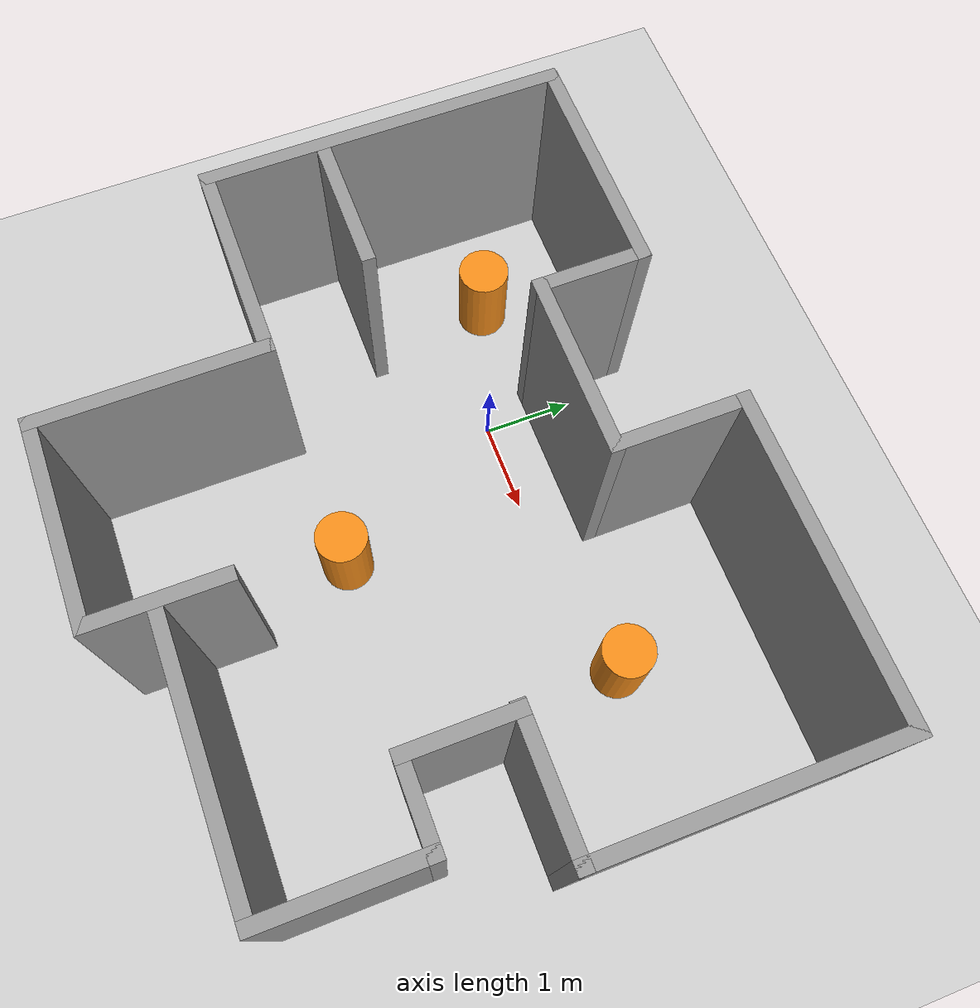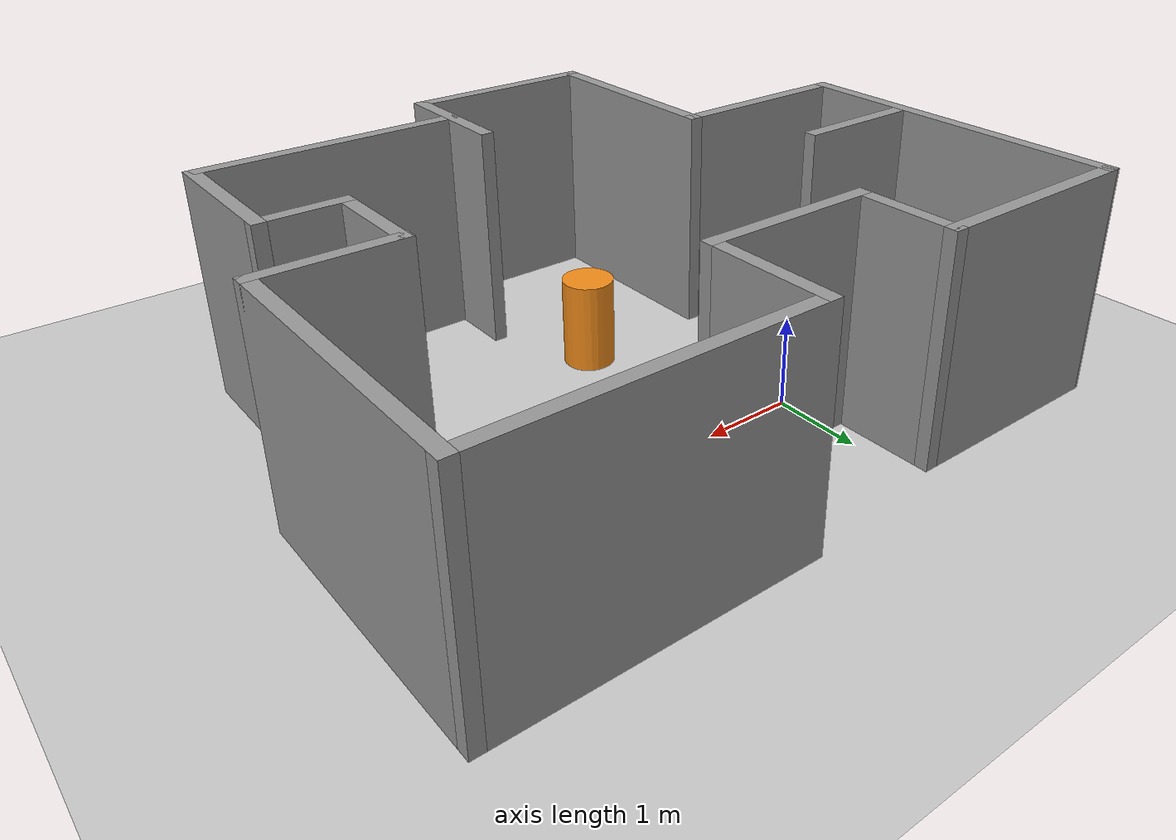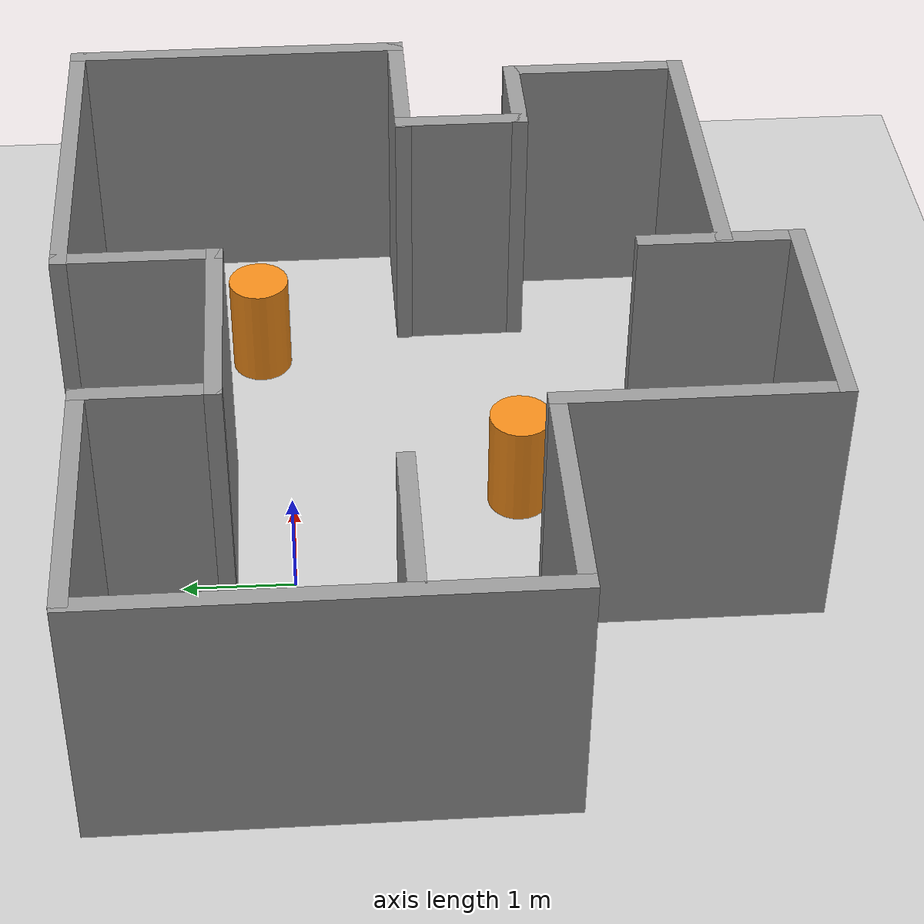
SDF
<sdf version="1.7">
 <world name="default">
  <light name="sun" type="directional">
   <pose>0 0 10 0 -0 0</pose>
   <diffuse>0.8 0.8 0.8 1</diffuse>
   <specular>0.2 0.2 0.2 1</specular>
   <attenuation>
    <range>1000</range>
    <constant>0.9</constant>
    <linear>0.01</linear>
    <quadratic>0.001</quadratic>
   </attenuation>
   <direction>-0.5 0.1 -0.9</direction>
   <spot><inner_angle>0</inner_angle><outer_angle>0</outer_angle><falloff>0</falloff></spot>
  </light>
  <model name="ground_plane">
   <static>1</static>
   <link name="link">
    <collision name="collision">
     <geometry><plane><normal>0 0 1</normal><size>100 100</size></plane></geometry>
     <surface>
      <contact><collide_bitmask>65535</collide_bitmask></contact>
      <friction><ode><mu>100</mu><mu2>50</mu2></ode></friction>
     </surface>
    </collision>
    <visual name="visual">
     <cast_shadows>0</cast_shadows>
     <geometry><plane><normal>0 0 1</normal><size>100 100</size></plane></geometry>
     <material>
      <script><uri>file://media/materials/scripts/gazebo.material</uri><name>Gazebo/Grey</name></script>
     </material>
    </visual>
   </link>
  </model>
  <gravity>0 0 -9.8</gravity>
  <magnetic_field>6e-06 2.3e-05 -4.2e-05</magnetic_field>
  <atmosphere type="adiabatic"/>
  <physics type="ode">
   <max_step_size>0.001</max_step_size>
   <real_time_factor>1</real_time_factor>
   <real_time_update_rate>1000</real_time_update_rate>
  </physics>
  <scene><ambient>0.4 0.4 0.4 1</ambient><background>0.7 0.7 0.7 1</background><shadows>0</shadows></scene>
  <spherical_coordinates>
   <surface_model>EARTH_WGS84</surface_model>
   <latitude_deg>0</latitude_deg>
   <longitude_deg>0</longitude_deg>
   <elevation>0</elevation>
   <heading_deg>0</heading_deg>
  </spherical_coordinates>
  <model name="enclosed_area_2">
   <pose>1.13556 -1.28959 0 0 -0 0</pose>
   <link name="Wall_14">
    <collision name="Wall_14_Collision">
     <geometry><box><size>4 0.15 2.5</size></box></geometry>
     <pose>0 0 1.25 0 -0 0</pose>
    </collision>
    <visual name="Wall_14_Visual">
     <pose>0 0 1.25 0 -0 0</pose>
     <geometry><box><size>4 0.15 2.5</size></box></geometry>
     <material>
      <script><uri>file://media/materials/scripts/gazebo.material</uri><name>Gazebo/Grey</name></script>
      <ambient>1 1 1 1</ambient>
     </material>
     <meta><layer>0</layer></meta>
    </visual>
    <pose>-3.79741 1.04659 0 0 -0 -1.5708</pose>
   </link>
   <link name="Wall_15">
    <collision name="Wall_15_Collision">
     <geometry><box><size>2.25 0.15 2.5</size></box></geometry>
     <pose>0 0 1.25 0 -0 0</pose>
    </collision>
    <visual name="Wall_15_Visual">
     <pose>0 0 1.25 0 -0 0</pose>
     <geometry><box><size>2.25 0.15 2.5</size></box></geometry>
     <material>
      <script><uri>file://media/materials/scripts/gazebo.material</uri><name>Gazebo/Grey</name></script>
      <ambient>1 1 1 1</ambient>
     </material>
     <meta><layer>0</layer></meta>
    </visual>
    <pose>-2.74741 -0.878412 0 0 -0 0</pose>
   </link>
   <link name="Wall_16">
    <collision name="Wall_16_Collision">
     <geometry><box><size>2.5 0.15 2.5</size></box></geometry>
     <pose>0 0 1.25 0 -0 0</pose>
    </collision>
    <visual name="Wall_16_Visual">
     <pose>0 0 1.25 0 -0 0</pose>
     <geometry><box><size>2.5 0.15 2.5</size></box></geometry>
     <material>
      <script><uri>file://media/materials/scripts/gazebo.material</uri><name>Gazebo/Grey</name></script>
      <ambient>1 1 1 1</ambient>
     </material>
     <meta><layer>0</layer></meta>
    </visual>
    <pose>-1.69741 -2.05341 0 0 -0 -1.5708</pose>
   </link>
   <link name="Wall_17">
    <collision name="Wall_17_Collision">
     <geometry><box><size>2.25 0.15 2.5</size></box></geometry>
     <pose>0 0 1.25 0 -0 0</pose>
    </collision>
    <visual name="Wall_17_Visual">
     <pose>0 0 1.25 0 -0 0</pose>
     <geometry><box><size>2.25 0.15 2.5</size></box></geometry>
     <material>
      <script><uri>file://media/materials/scripts/gazebo.material</uri><name>Gazebo/Grey</name></script>
      <ambient>1 1 1 1</ambient>
     </material>
     <meta><layer>0</layer></meta>
    </visual>
    <pose>-0.647409 -3.22841 0 0 -0 0</pose>
   </link>
   <link name="Wall_18">
    <collision name="Wall_18_Collision">
     <geometry><box><size>1.5 0.15 2.5</size></box></geometry>
     <pose>0 0 1.25 0 -0 0</pose>
    </collision>
    <visual name="Wall_18_Visual">
     <pose>0 0 1.25 0 -0 0</pose>
     <geometry><box><size>1.5 0.15 2.5</size></box></geometry>
     <material>
      <script><uri>file://media/materials/scripts/gazebo.material</uri><name>Gazebo/Grey</name></script>
      <ambient>1 1 1 1</ambient>
     </material>
     <meta><layer>0</layer></meta>
    </visual>
    <pose>0.402591 -2.55341 0 0 -0 1.5708</pose>
   </link>
   <link name="Wall_20">
    <collision name="Wall_20_Collision">
     <geometry><box><size>3 0.15 2.5</size></box></geometry>
     <pose>0 0 1.25 0 -0 0</pose>
    </collision>
    <visual name="Wall_20_Visual">
     <pose>0 0 1.25 0 -0 0</pose>
     <geometry><box><size>3 0.15 2.5</size></box></geometry>
     <material>
      <script><uri>file://media/materials/scripts/gazebo.material</uri><name>Gazebo/Grey</name></script>
      <ambient>1 1 1 1</ambient>
     </material>
     <meta><layer>0</layer></meta>
    </visual>
    <pose>1.85729 -2.57159 0 0 -0 0</pose>
   </link>
   <link name="Wall_21">
    <collision name="Wall_21_Collision">
     <geometry><box><size>1.75 0.15 2.5</size></box></geometry>
     <pose>0 0 1.25 0 -0 0</pose>
    </collision>
    <visual name="Wall_21_Visual">
     <pose>0 0 1.25 0 -0 0</pose>
     <geometry><box><size>1.75 0.15 2.5</size></box></geometry>
     <material>
      <script><uri>file://media/materials/scripts/gazebo.material</uri><name>Gazebo/Grey</name></script>
      <ambient>1 1 1 1</ambient>
     </material>
     <meta><layer>0</layer></meta>
    </visual>
    <pose>3.28229 -1.77159 0 0 -0 1.5708</pose>
   </link>
   <link name="Wall_22">
    <collision name="Wall_22_Collision">
     <geometry><box><size>1 0.15 2.5</size></box></geometry>
     <pose>0 0 1.25 0 -0 0</pose>
    </collision>
    <visual name="Wall_22_Visual">
     <pose>0 0 1.25 0 -0 0</pose>
     <geometry><box><size>1 0.15 2.5</size></box></geometry>
     <material>
      <script><uri>file://media/materials/scripts/gazebo.material</uri><name>Gazebo/Grey</name></script>
      <ambient>1 1 1 1</ambient>
     </material>
     <meta><layer>0</layer></meta>
    </visual>
    <pose>2.85729 -0.971589 0 0 -0 3.14159</pose>
   </link>
   <link name="Wall_23">
    <collision name="Wall_23_Collision">
     <geometry><box><size>1.25 0.15 2.5</size></box></geometry>
     <pose>0 0 1.25 0 -0 0</pose>
    </collision>
    <visual name="Wall_23_Visual">
     <pose>0 0 1.25 0 -0 0</pose>
     <geometry><box><size>1.25 0.15 2.5</size></box></geometry>
     <material>
      <script><uri>file://media/materials/scripts/gazebo.material</uri><name>Gazebo/Grey</name></script>
      <ambient>1 1 1 1</ambient>
     </material>
     <meta><layer>0</layer></meta>
    </visual>
    <pose>2.43229 -0.421589 0 0 -0 1.5708</pose>
   </link>
   <link name="Wall_24">
    <collision name="Wall_24_Collision">
     <geometry><box><size>1.53025 0.15 2.5</size></box></geometry>
     <pose>0 0 1.25 0 -0 0</pose>
    </collision>
    <visual name="Wall_24_Visual">
     <pose>0 0 1.25 0 -0 0</pose>
     <geometry><box><size>1.53025 0.15 2.5</size></box></geometry>
     <material>
      <script><uri>file://media/materials/scripts/gazebo.material</uri><name>Gazebo/Grey</name></script>
      <ambient>1 1 1 1</ambient>
     </material>
     <meta><layer>0</layer></meta>
    </visual>
    <pose>3.10729 0.128412 0 0 -0 0</pose>
   </link>
   <link name="Wall_25">
    <collision name="Wall_25_Collision">
     <geometry><box><size>3.25 0.15 2.5</size></box></geometry>
     <pose>0 0 1.25 0 -0 0</pose>
    </collision>
    <visual name="Wall_25_Visual">
     <pose>0 0 1.25 0 -0 0</pose>
     <geometry><box><size>3.25 0.15 2.5</size></box></geometry>
     <material>
      <script><uri>file://media/materials/scripts/gazebo.material</uri><name>Gazebo/Grey</name></script>
      <ambient>1 1 1 1</ambient>
     </material>
     <meta><layer>0</layer></meta>
    </visual>
    <pose>3.79741 1.67841 0 0 -0 1.5708</pose>
   </link>
   <link name="Wall_26">
    <collision name="Wall_26_Collision">
     <geometry><box><size>3.5 0.15 2.5</size></box></geometry>
     <pose>0 0 1.25 0 -0 0</pose>
    </collision>
    <visual name="Wall_26_Visual">
     <pose>0 0 1.25 0 -0 0</pose>
     <geometry><box><size>3.5 0.15 2.5</size></box></geometry>
     <material>
      <script><uri>file://media/materials/scripts/gazebo.material</uri><name>Gazebo/Grey</name></script>
      <ambient>1 1 1 1</ambient>
     </material>
     <meta><layer>0</layer></meta>
    </visual>
    <pose>2.12241 3.22841 0 0 -0 3.14159</pose>
   </link>
   <link name="Wall_27">
    <collision name="Wall_27_Collision">
     <geometry><box><size>1.5 0.15 2.5</size></box></geometry>
     <pose>0 0 1.25 0 -0 0</pose>
    </collision>
    <visual name="Wall_27_Visual">
     <pose>0 0 1.25 0 -0 0</pose>
     <geometry><box><size>1.5 0.15 2.5</size></box></geometry>
     <material>
      <script><uri>file://media/materials/scripts/gazebo.material</uri><name>Gazebo/Grey</name></script>
      <ambient>1 1 1 1</ambient>
     </material>
     <meta><layer>0</layer></meta>
    </visual>
    <pose>0.447409 2.55341 0 0 -0 -1.5708</pose>
   </link>
   <link name="Wall_28">
    <collision name="Wall_28_Collision">
     <geometry><box><size>2 0.15 2.5</size></box></geometry>
     <pose>0 0 1.25 0 -0 0</pose>
    </collision>
    <visual name="Wall_28_Visual">
     <pose>0 0 1.25 0 -0 0</pose>
     <geometry><box><size>2 0.15 2.5</size></box></geometry>
     <material>
      <script><uri>file://media/materials/scripts/gazebo.material</uri><name>Gazebo/Grey</name></script>
      <ambient>1 1 1 1</ambient>
     </material>
     <meta><layer>0</layer></meta>
    </visual>
    <pose>-0.477591 1.87841 0 0 -0 3.14159</pose>
   </link>
   <link name="Wall_29">
    <collision name="Wall_29_Collision">
     <geometry><box><size>1.25 0.15 2.5</size></box></geometry>
     <pose>0 0 1.25 0 -0 0</pose>
    </collision>
    <visual name="Wall_29_Visual">
     <pose>0 0 1.25 0 -0 0</pose>
     <geometry><box><size>1.25 0.15 2.5</size></box></geometry>
     <material>
      <script><uri>file://media/materials/scripts/gazebo.material</uri><name>Gazebo/Grey</name></script>
      <ambient>1 1 1 1</ambient>
     </material>
     <meta><layer>0</layer></meta>
    </visual>
    <pose>-1.40259 2.42841 0 0 -0 1.5708</pose>
   </link>
   <link name="Wall_30">
    <collision name="Wall_30_Collision">
     <geometry><box><size>2.5 0.15 2.5</size></box></geometry>
     <pose>0 0 1.25 0 -0 0</pose>
    </collision>
    <visual name="Wall_30_Visual">
     <pose>0 0 1.25 0 -0 0</pose>
     <geometry><box><size>2.5 0.15 2.5</size></box></geometry>
     <material>
      <script><uri>file://media/materials/scripts/gazebo.material</uri><name>Gazebo/Grey</name></script>
      <ambient>1 1 1 1</ambient>
     </material>
     <meta><layer>0</layer></meta>
    </visual>
    <pose>-2.57759 2.97841 0 0 -0 3.14159</pose>
   </link>
   <link name="Wall_32">
    <collision name="Wall_32_Collision">
     <geometry><box><size>1.5 0.15 2.5</size></box></geometry>
     <pose>0 0 1.25 0 -0 0</pose>
    </collision>
    <visual name="Wall_32_Visual">
     <pose>0 0 1.25 0 -0 0</pose>
     <geometry><box><size>1.5 0.15 2.5</size></box></geometry>
     <material>
      <script><uri>file://media/materials/scripts/gazebo.material</uri><name>Gazebo/Grey</name></script>
      <ambient>1 1 1 1</ambient>
     </material>
     <meta><layer>0</layer></meta>
    </visual>
    <pose>-3.02706 0.372909 0 0 -0 3.14159</pose>
   </link>
   <static>1</static>
  </model>
  <model name="unit_cylinder_clone">
   <pose>-1.49409 0.501381 0.499999 0 -0 0</pose>
   <link name="link">
    <inertial>
     <mass>1</mass>
     <inertia><ixx>0.145833</ixx><ixy>0</ixy><ixz>0</ixz><iyy>0.145833</iyy><iyz>0</iyz><izz>0.125</izz></inertia>
    </inertial>
    <collision name="collision">
     <geometry><cylinder><radius>0.283561</radius><length>1</length></cylinder></geometry>
    </collision>
    <visual name="visual">
     <geometry><cylinder><radius>0.283561</radius><length>1</length></cylinder></geometry>
     <material>
      <script><name>Gazebo/Orange</name><uri>file://media/materials/scripts/gazebo.material</uri></script>
     </material>
    </visual>
   </link>
  </model>
  <model name="unit_cylinder_clone_0">
   <pose>1.00516 -2.06827 0.499992 0 -0 0</pose>
   <link name="link">
    <inertial>
     <mass>1</mass>
     <inertia><ixx>0.145833</ixx><ixy>0</ixy><ixz>0</ixz><iyy>0.145833</iyy><iyz>0</iyz><izz>0.125</izz></inertia>
    </inertial>
    <collision name="collision">
     <geometry><cylinder><radius>0.283561</radius><length>1</length></cylinder></geometry>
    </collision>
    <visual name="visual">
     <geometry><cylinder><radius>0.283561</radius><length>1</length></cylinder></geometry>
     <material>
      <script><name>Gazebo/Orange</name><uri>file://media/materials/scripts/gazebo.material</uri></script>
     </material>
    </visual>
   </link>
  </model>
  <model name="unit_cylinder_clone_clone">
   <pose>3.17412 0.263293 0.499998 -1e-06 -1e-06 0</pose>
   <link name="link">
    <inertial>
     <mass>1</mass>
     <inertia><ixx>0.145833</ixx><ixy>0</ixy><ixz>0</ixz><iyy>0.145833</iyy><iyz>0</iyz><izz>0.125</izz></inertia>
    </inertial>
    <collision name="collision">
     <geometry><cylinder><radius>0.283561</radius><length>1</length></cylinder></geometry>
    </collision>
    <visual name="visual">
     <geometry><cylinder><radius>0.283561</radius><length>1</length></cylinder></geometry>
     <material>
      <script><name>Gazebo/Orange</name><uri>file://media/materials/scripts/gazebo.material</uri></script>
     </material>
    </visual>
   </link>
  </model>
 </world>
</sdf>
